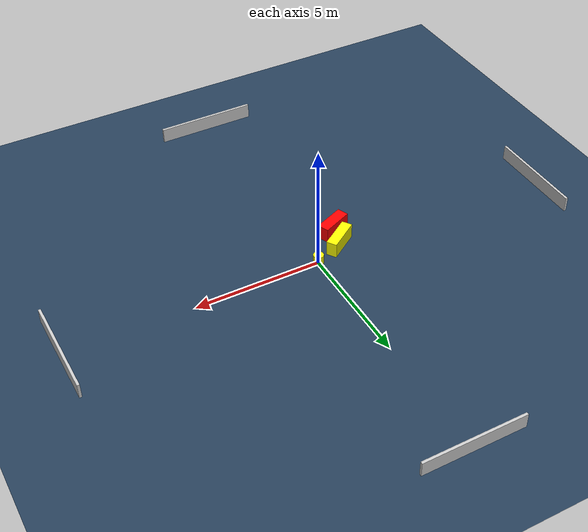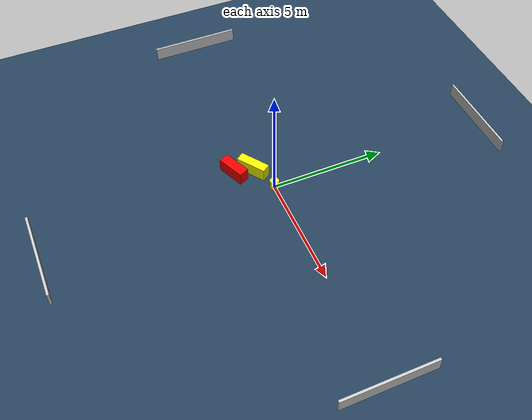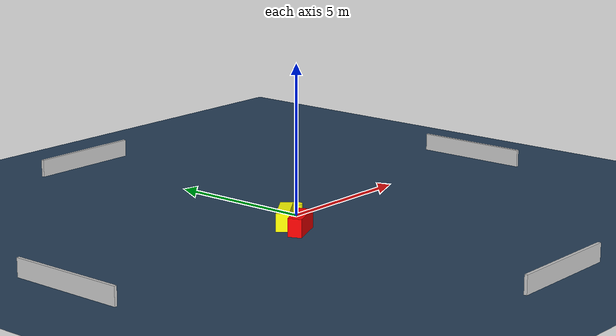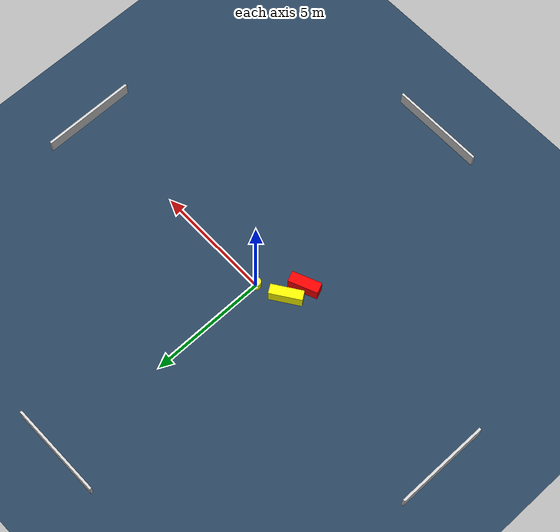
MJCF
<?xml version="1.0" ?>
<mujoco model="generated_environment">
  <option timestep="0.01" integrator="RK4" cone="elliptic"/>
  <default>
    <geom density="1"/>
  </default>
  <asset>
    <texture builtin="gradient" height="3072" name="skybox" rgb1="0.3 0.5 0.7" rgb2="0 0 0" type="skybox" width="512"/>
    <texture builtin="checker" height="300" name="groundplane" rgb1="0.2 0.3 0.4" rgb2="0.1 0.2 0.3" type="2d" width="300"/>
    <material name="groundplane" reflectance="0.2" texrepeat="5 5" texture="groundplane"/>
  </asset>
  <worldbody>
    <light dir="0 0 -1" directional="true" pos="0 0 1.5"/>
    <geom condim="3" friction="0.5 0.005 0.001" material="groundplane" name="floor" pos="0 0 0" size="0 0 0.05" type="plane"/>
    <body name="walls">
      <geom name="wall_1" condim="4" pos="-10.0 0.0 0.3" rgba="0.800000011920929 0.800000011920929 0.800000011920929 1.0" size="0.05 2.0 0.3" type="box"/>
      <geom name="wall_2" condim="4" pos="10.0 0.0 0.3" rgba="0.800000011920929 0.800000011920929 0.800000011920929 1.0" size="0.05 2.0 0.3" type="box"/>
      <geom name="wall_3" condim="4" pos="0.0 -10.0 0.3" rgba="0.800000011920929 0.800000011920929 0.800000011920929 1.0" size="2.0 0.05 0.3" type="box"/>
      <geom name="wall_4" condim="4" pos="0.0 10.0 0.3" rgba="0.800000011920929 0.800000011920929 0.800000011920929 1.0" size="2.0 0.05 0.3" type="box"/>
    </body>
    <body name="robot">
      <joint name="joint_x" type="slide" pos="0 0 0" axis="1 0 0"/>
      <joint name="joint_y" type="slide" pos="0 0 0" axis="0 1 0"/>
      <geom name="robot" type="cylinder" pos="0.0 0.0 0.2" size="0.2 0.2 0.0" mass="5.0" friction="1.0 0.005 0.0001" condim="4" rgba="1.0 1.0 0.0 1.0"/>
    </body>
    <body name="obstacle_1_movable">
      <geom name="obstacle_1_movable" condim="4" pos="-1.1720712333460082 -0.49752230761236965 0.3" euler="0 0 214.5870083846029" friction="0.0 0.005 0.001" rgba="1.0 1.0 0.0 1.0" size="0.6757728619401728 0.2061891401264695 0.3" type="box" mass="0.1"/>
      <joint type="free"/>
    </body>
    <body name="obstacle_2_static">
      <geom name="obstacle_2_static" condim="4" pos="-1.3559130381271003 -1.304577490345973 0.3" euler="0 0 112.97220494188136" friction="0.0 0.005 0.001" rgba="1.0 0.0 0.0 1.0" size="0.22747182948564496 0.6266555839589525 0.3" type="box"/>
    </body>
  </worldbody>
  <actuator>
    <motor name="actuator_x" joint="joint_x" gear="1" ctrlrange="-1 1"/>
    <motor name="actuator_y" joint="joint_y" gear="1" ctrlrange="-1 1"/>
  </actuator>
</mujoco>
